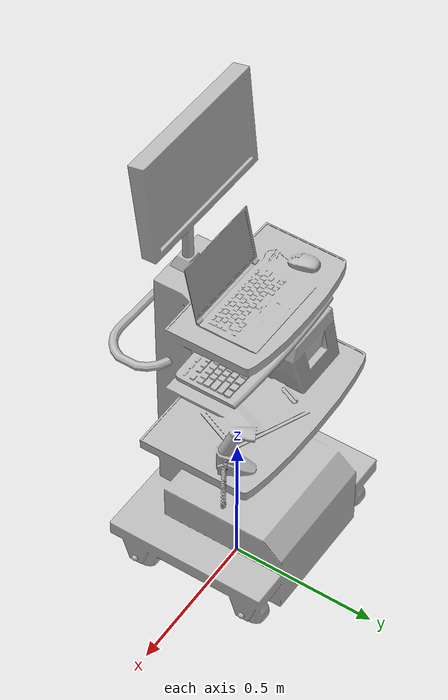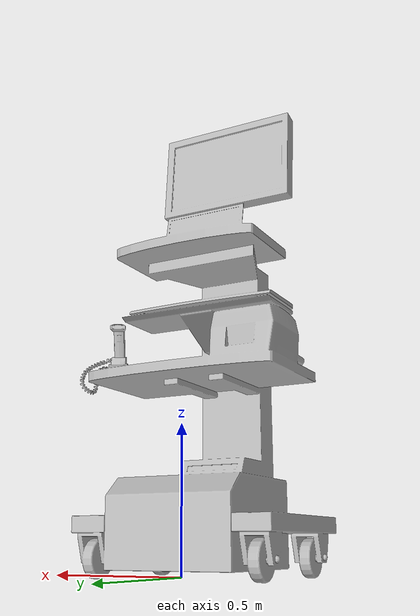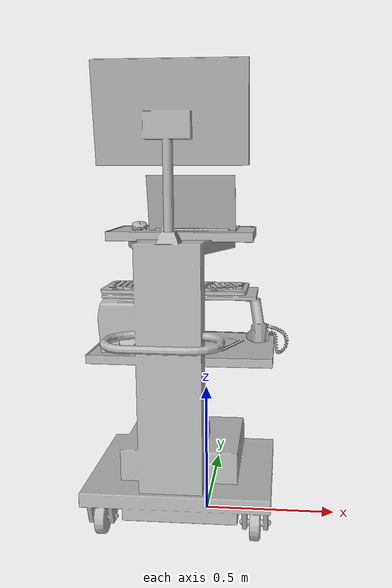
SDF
<?xml version='1.0'?>
<sdf version='1.6'>
  <model name='computer'>
    <static>true</static>
    <link name="link">
      <pose>0 0 0 0 0 0</pose>
      <visual name="visual">
            <geometry>
                <mesh>
                  <scale>0.01 0.01 0.01</scale>
                  <uri>model://computer_mobile/meshes/computer.dae</uri>
                </mesh>
            </geometry>
        </visual>

    </link>
  </model>
</sdf>
